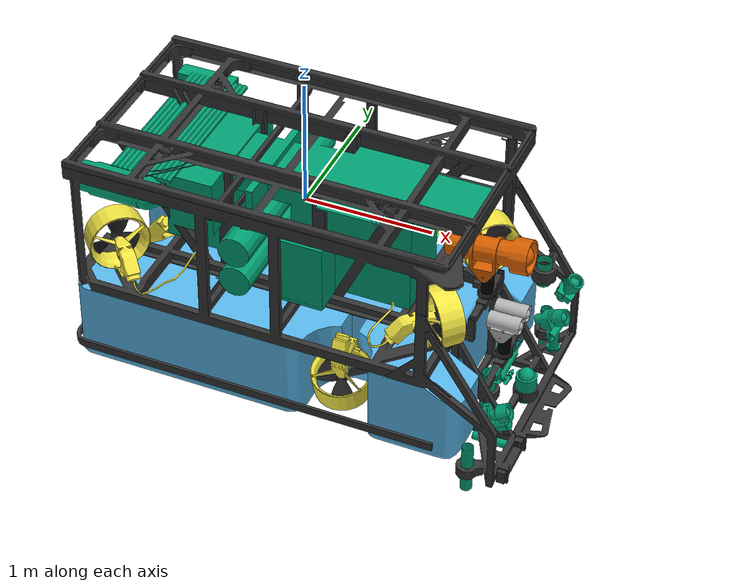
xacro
<?xml version="1.0" encoding="utf-8"?>
<robot name="ricketts" xmlns:xacro="http://ros.org/wiki/xacro">

    <xacro:include filename="materials.xacro" />

    <link name="ricketts_frame">
      <visual>
        <origin
          xyz="0 0 0"
          rpy="0 0 0" />
        <geometry>
          <mesh
            filename="package://ricketts_sim/data/ricketts/mesh/rviz/ricketts_frame.stl" scale="1.0 1.0 1.0"/>
        </geometry>
        <material name="ricketts_frame"/>
      </visual>
    </link>

    <link name="ricketts_float">
      <visual>
        <origin
          xyz="0 0 0"
          rpy="0 0 0" />
        <geometry>
          <mesh
            filename="package://ricketts_sim/data/ricketts/mesh/rviz/ricketts_float.obj" scale="1.0 1.0 1.0"/>
        </geometry>
      </visual>
    </link>

    <link name="ricketts_equipment">
      <visual>
        <origin
          xyz="0 0 0"
          rpy="0 0 0" />
        <geometry>
          <mesh
            filename="package://ricketts_sim/data/ricketts/mesh/rviz/ricketts_equipment.obj" scale="1.0 1.0 1.0"/>
        </geometry>
      </visual>
    </link>

    <link name="ricketts_ducts">
      <visual>
        <origin
          xyz="0 0 0"
          rpy="0 0 0" />
        <geometry>
          <mesh
            filename="package://ricketts_sim/data/ricketts/mesh/rviz/ricketts_ducts.obj" scale="1.0 1.0 1.0"/>
        </geometry>
      </visual>
    </link>

    <link name="ricketts_front_camera_link">
      <visual>
        <origin
          xyz="0 0 0"
          rpy="0 0 0" />
        <geometry>
          <mesh
            filename="package://ricketts_sim/data/ricketts/mesh/rviz/ricketts_frame_to_camera_link.stl" scale="1.0 1.0 1.0"/>
        </geometry>
        <material name="black"/>
      </visual>
    </link>

    <link name="ricketts_front_camera">
      <visual>
        <origin
          xyz="0 0 0"
          rpy="0 0 0" />
        <geometry>
          <mesh
            filename="package://ricketts_sim/data/ricketts/mesh/rviz/ricketts_front_camera.obj" scale="1.0 1.0 1.0"/>
        </geometry>
      </visual>
    </link>

    <link name="ricketts_stereo_camera_link">
      <visual>
        <origin
          xyz="0 0 0"
          rpy="0 0 0" />
        <geometry>
          <mesh
            filename="package://ricketts_sim/data/ricketts/mesh/rviz/ricketts_frame_to_camera_link.stl" scale="1.0 1.0 1.0"/>
        </geometry>
        <material name="black"/>
      </visual>
    </link>

    <link name="ricketts_stereo_camera">
      <visual>
        <origin
          xyz="0 0 0"
          rpy="0 0 0" />
        <geometry>
          <mesh
            filename="package://ricketts_sim/data/ricketts/mesh/rviz/ricketts_stereo_camera.obj" scale="1.0 1.0 1.0"/>
        </geometry>
      </visual>
    </link>

    <!-- PROPELLER LU -->
    <link name="ricketts_propLU">
      <visual>
        <origin
          xyz="0 0 0"
          rpy="0 0 0" />
        <geometry>
          <mesh
            filename="package://ricketts_sim/data/ricketts/mesh/propeller.stl" scale="1.0 1.0 1.0"/>
        </geometry>
        <material name="propeller"/>
      </visual>
    </link>
    <joint name="base_propLU" type="fixed">
	  <origin rpy="${-pi/12} ${pi} 0.0" xyz="0.5862 -0.6582 -1.0133"/>
      <parent link="ricketts_frame" />
      <child link="ricketts_propLU" />
    </joint>

    <!-- PROPELLER RU -->
    <link name="ricketts_propRU">
      <visual>
        <origin
          xyz="0 0 0"
          rpy="0 0 0" />
        <geometry>
          <mesh
            filename="package://ricketts_sim/data/ricketts/mesh/propeller.stl" scale="1.0 1.0 1.0"/>
        </geometry>
        <material name="propeller"/>
      </visual>
    </link>
    <joint name="base_propRU" type="fixed">
	  <origin rpy="${pi/12} ${pi} 0.0" xyz="0.5862 0.6582 -1.0133"/>
      <parent link="ricketts_frame" />
      <child link="ricketts_propRU" />
    </joint>

    <!-- PROPELLER BU -->
    <link name="ricketts_propBU">
      <visual>
        <origin
          xyz="0 0 0"
          rpy="0 0 0" />
        <geometry>
          <mesh
            filename="package://ricketts_sim/data/ricketts/mesh/propeller.stl" scale="1.0 1.0 1.0"/>
        </geometry>
        <material name="propeller"/>
      </visual>
    </link>
    <joint name="base_propBU" type="fixed">
	  <origin rpy="0.0 ${pi} 0.0" xyz="-1.2834 0.0 -0.9832"/>
      <parent link="ricketts_frame" />
      <child link="ricketts_propBU" />
    </joint>

    <!-- PROPELLER FL -->
    <link name="ricketts_propFL">
      <visual>
        <origin
          xyz="0 0 0"
          rpy="0 0 0" />
        <geometry>
          <mesh
            filename="package://ricketts_sim/data/ricketts/mesh/propeller.stl" scale="1.0 1.0 1.0"/>
        </geometry>
        <material name="propeller"/>
      </visual>
    </link>
    <joint name="base_propFL" type="fixed">
	  <origin rpy="0.0 ${pi/2} ${pi/4}" xyz="1.2564 -0.4709 -0.3321"/>
      <parent link="ricketts_frame" />
      <child link="ricketts_propFL" />
    </joint>

    <!-- PROPELLER FR -->
    <link name="ricketts_propFR">
      <visual>
        <origin
          xyz="0 0 0"
          rpy="0 0 0" />
        <geometry>
          <mesh
            filename="package://ricketts_sim/data/ricketts/mesh/propeller.stl" scale="1.0 1.0 1.0"/>
        </geometry>
        <material name="propeller"/>
      </visual>
    </link>
    <joint name="base_propFR" type="fixed">
	  <origin rpy="0.0 ${pi/2} ${-pi/4}" xyz="1.2564 0.4709 -0.3321"/>
      <parent link="ricketts_frame" />
      <child link="ricketts_propFR" />
    </joint>

    <!-- PROPELLER BL -->
    <link name="ricketts_propBL">
      <visual>
        <origin
          xyz="0 0 0"
          rpy="0 0 0" />
        <geometry>
          <mesh
            filename="package://ricketts_sim/data/ricketts/mesh/propeller.stl" scale="1.0 1.0 1.0"/>
        </geometry>
        <material name="propeller"/>
      </visual>
    </link>
    <joint name="base_propBL" type="fixed">
	  <origin rpy="0.0 ${-pi/2} ${-pi/2 + pi/4}" xyz="-1.2834 -0.6001 -0.3321"/>
      <parent link="ricketts_frame" />
      <child link="ricketts_propBL" />
    </joint>

    <!-- PROPELLER BR -->
    <link name="ricketts_propBR">
      <visual>
        <origin
          xyz="0 0 0"
          rpy="0 0 0" />
        <geometry>
          <mesh
            filename="package://ricketts_sim/data/ricketts/mesh/propeller.stl" scale="1.0 1.0 1.0"/>
        </geometry>
        <material name="propeller"/>
      </visual>
    </link>
    <joint name="base_propBR" type="fixed">
	  <origin rpy="0.0 ${-pi/2} ${pi/2 - pi/4}" xyz="-1.2643  0.6001 -0.3321"/>
      <parent link="ricketts_frame" />
      <child link="ricketts_propBR" />
    </joint>

    <!-- JOINT FRAME TO OTHER ROBOT PARTS -->
    <joint name="frame_float" type="fixed">
      <origin rpy="0 0 0" xyz="0 0 0"/>
      <parent link="ricketts_frame" />
      <child link="ricketts_float" />
    </joint>
    <joint name="frame_ducts" type="fixed">
      <origin rpy="0 0 0" xyz="0 0 0"/>
      <parent link="ricketts_frame" />
      <child link="ricketts_ducts" />
    </joint>
    <joint name="frame_equipment" type="fixed">
      <origin rpy="0 0 0" xyz="0 0 0"/>
      <parent link="ricketts_frame" />
      <child link="ricketts_equipment" />
    </joint>

    <joint name="frame_front_camera_link" type="revolute">
        <parent link="ricketts_frame"/>
        <child link="ricketts_front_camera_link"/>
		<origin xyz="1.441  0.0 -0.4254" rpy="0.0 0.0 0.0"/>
        <axis xyz="0.0 0.0 1.0"/>
        <limit lower="${-pi/2}" upper="${pi/2}" effort="1.0" velocity="1.0"/>
    </joint>
    <joint name="front_camera_link_camera" type="revolute">
        <parent link="ricketts_front_camera_link"/>
        <child link="ricketts_front_camera"/>
		<origin xyz="0.0 0.0 0.23495" rpy="0.0 0.0 0.0"/>
        <axis xyz="0.0 1.0 0.0"/>
        <limit lower="${-pi/2}" upper="${pi/2}" effort="1.0" velocity="1.0"/>
    </joint>

    <joint name="frame_stereo_camera_link" type="revolute">
        <parent link="ricketts_frame"/>
        <child link="ricketts_stereo_camera_link"/>
		<origin xyz="1.59918 0.0 -0.949676" rpy="0.0 0.0 0.0"/>
        <axis xyz="0.0 0.0 1.0"/>
        <limit lower="${-pi/2}" upper="${pi/2}" effort="1.0" velocity="1.0"/>
    </joint>
    <joint name="stereo_camera_link_stereo_camera" type="revolute">
        <parent link="ricketts_stereo_camera_link"/>
        <child link="ricketts_stereo_camera"/>
		<origin xyz="0.0 0.0 0.23495" rpy="0.0 0.0 0.0"/>
        <axis xyz="0.0 1.0 0.0"/>
        <limit lower="${-pi/2}" upper="${pi/2}" effort="1.0" velocity="1.0"/>
    </joint>

</robot>

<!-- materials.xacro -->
<robot xmlns:xacro="http://ros.org/wiki/xacro">
    <material name="blue">
        <color rgba="0 0.3 0.8 1"/>
    </material>

    <material name="black">
        <color rgba="0 0 0 1"/>
    </material>

    <material name="blue_propeller">
        <color rgba="0 0.1 0.85 1"/>
    </material>

    <material name="glass">
        <color rgba="1.0 1.0 1.0 0.5"/>
    </material>

    <material name="yellow">
        <color rgba="0.898 0.769 0.145 1.0"/>
    </material>

    <material name="gray">
        <color rgba="0.5 0.5 0.5 0.7"/>
    </material>

    <material name="propeller">
        <color rgba="0.1 0.1 0.1 1.0"/>
    </material>

    <material name="ricketts_frame">
        <color rgba="0.2 0.2 0.2 1.0"/>
    </material>

    <material name="ricketts_ducts">
        <color rgba="0.898 0.769 0.145 1.0"/>
    </material>

    <material name="ricketts_equipments">
        <color rgba="0.05 0.05 0.05 1.0"/>
    </material>

    <material name="ricketts_float">
        <texture filename="package://ricketts_sim/data/ricketts/texture/ricketts_float.png"/>
    </material>
    <material name="ricketts_front_camera">
        <texture filename="package://ricketts_sim/data/ricketts/texture/ricketts_front_camera.png"/>
    </material>
    <material name="ricketts_stereo_camera">
        <texture filename="package://ricketts_sim/data/ricketts/texture/ricketts_stereo_camera.png"/>
    </material>

</robot>
